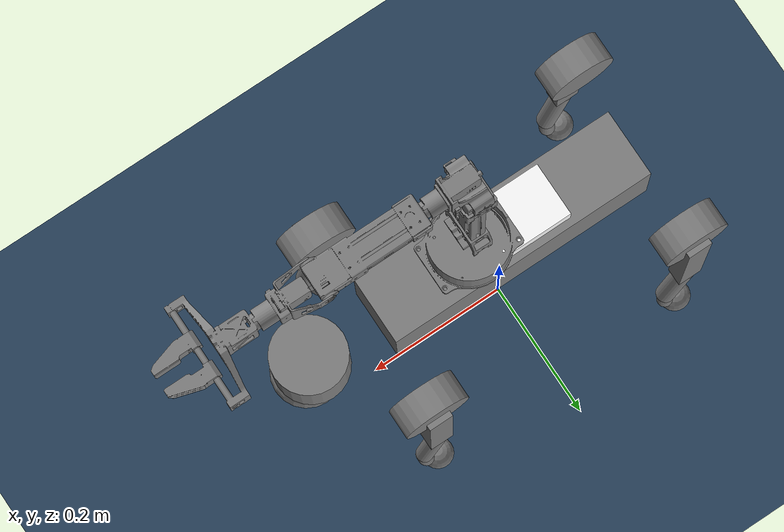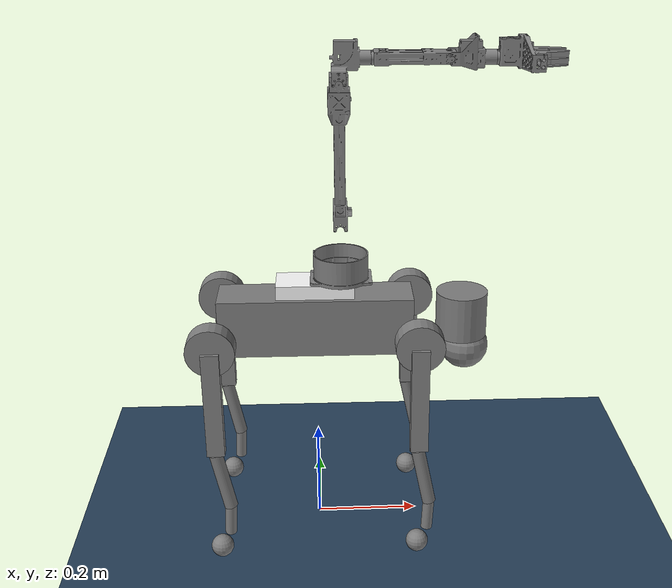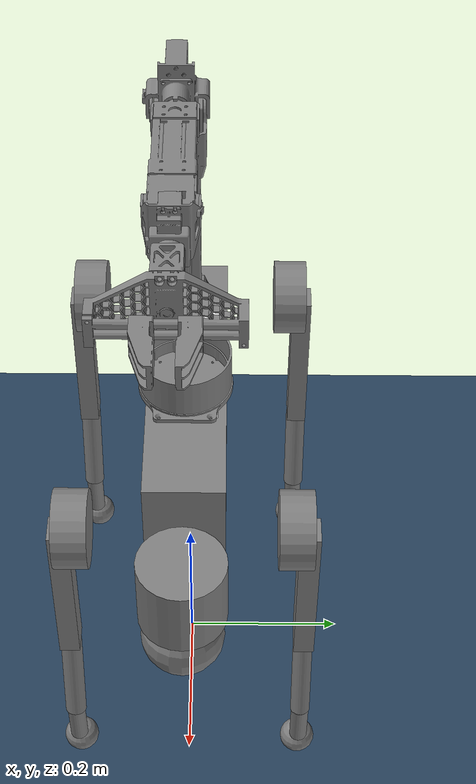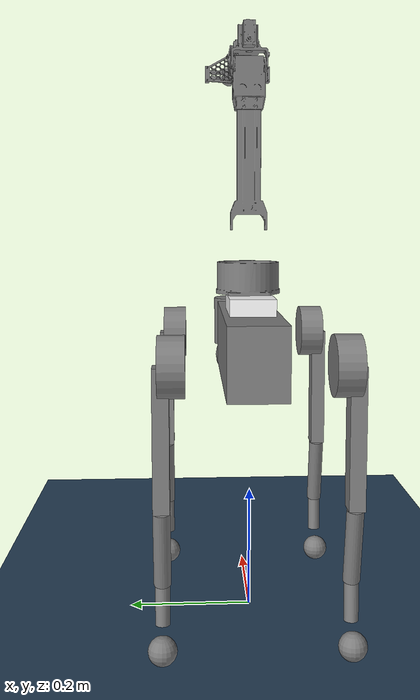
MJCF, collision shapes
<mujoco model="go2_arm scene">
  <include file="go2_arm.xml"/>

  <statistic center="0 0 0.1" extent="0.8"/>

  <visual>
    <headlight diffuse="0.6 0.6 0.6" ambient="0.3 0.3 0.3" specular="0 0 0"/>
    <rgba haze="0.15 0.25 0.35 1"/>
    <global azimuth="-130" elevation="-20"/>
  </visual>

  <asset>
    <texture type="skybox" builtin="gradient" rgb1="0.3 0.5 0.7" rgb2="0 0 0" width="512" height="3072"/>
    <texture type="2d" name="groundplane" builtin="checker" mark="edge" rgb1="0.2 0.3 0.4" rgb2="0.1 0.2 0.3"
      markrgb="0.8 0.8 0.8" width="300" height="300"/>
    <material name="groundplane" texture="groundplane" texuniform="true" texrepeat="5 5" reflectance="0.2"/>
  </asset>

  <worldbody>
    <light pos="0 0 1.5" dir="0 0 -1" directional="true"/>
    <geom name="floor" size="0 0 0.05" type="plane" material="groundplane"/>
  </worldbody>
</mujoco>

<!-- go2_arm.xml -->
<mujoco model="go2_arm">
  <compiler angle="radian" meshdir="assets" autolimits="true" />

  <default>
    <default class="go2">
      <default class="visual">
        <geom type="mesh" contype="0" conaffinity="0" density="0" group="2"/>
      </default>
      <default class="collision">
        <geom priority="1" condim="6" group="3"/>
      </default>
      <site rgba="1 0 0 1" group="5"/>
    </default>

    <default class="d1">
      <site group="5" size="0.005" rgba="0 1 0 1"/>
      <joint axis="0 0 1"/>
      <default class="d1_visual">
        <geom type="mesh" contype="0" conaffinity="0" density="0" group="2" material="black"/>
      </default>
      <default class="d1_collision">
        <geom group="3" type="mesh"/>
      </default>
      <default class="finger">
        <joint type="slide"/>
      </default>
    </default>
  </default>

  <asset>
    <material name="metal" rgba=".9 .95 .95 1" />
    <material name="black" rgba="0 0 0 1" />
    <material name="white" rgba="1 1 1 1" />
    <material name="gray" rgba="0.671705 0.692426 0.774270 1" />

    <mesh file="base_0.obj" />
    <mesh file="base_1.obj" />
    <mesh file="base_2.obj" />
    <mesh file="base_3.obj" />
    <mesh file="base_4.obj" />
    <mesh file="hip_0.obj" />
    <mesh file="hip_1.obj" />
    <mesh file="thigh_0.obj" />
    <mesh file="thigh_1.obj" />
    <mesh file="thigh_mirror_0.obj" />
    <mesh file="thigh_mirror_1.obj" />
    <mesh file="calf_0.obj" />
    <mesh file="calf_1.obj" />
    <mesh file="calf_mirror_0.obj" />
    <mesh file="calf_mirror_1.obj" />
    <mesh file="foot.obj" />

    <mesh file="base_link.obj"/>
    <mesh file="Link1.obj"/>
    <mesh file="Link2.obj"/>
    <mesh file="Link3.obj"/>
    <mesh file="Link4.obj"/>
    <mesh file="Link5.obj"/>
    <mesh file="Link6.obj"/>
    <mesh file="Link7_1.obj"/>
    <mesh file="Link7_2.obj"/>
  </asset>

  <worldbody>
    <body name="base_link" pos="0 0 0.445" childclass="go2">
      <inertial pos="0.021112 0 -0.005366" quat="-0.000543471 0.713435 -0.00173769 0.700719" mass="6.921" diaginertia="0.107027 0.0980771 0.0244531" />
      <freejoint name="floating_base_joint"/>
      <geom mesh="base_0" material="black" class="visual" />
      <geom mesh="base_1" material="black" class="visual" />
      <geom mesh="base_2" material="black" class="visual" />
      <geom mesh="base_3" material="white" class="visual" />
      <geom mesh="base_4" material="gray" class="visual" />
      <geom name="base1_collision" size="0.1881 0.04675 0.057" type="box" class="collision" />
      <geom name="base2_collision" size="0.05 0.045" pos="0.285 0 0.01" type="cylinder" class="collision" />
      <geom name="base3_collision" size="0.047" pos="0.293 0 -0.06" type="sphere" class="collision" />
      <site name="imu" pos="-0.02557 0 0.04232" group="5"/>

      <body name="arm_mount" pos="0 0 0.07075">
        <geom name="mount_visual" type="box" size="0.075 0.037 0.01375" material="white" class="visual"/>
        <geom name="mount_collision" type="box" size="0.075 0.037 0.01375" class="collision"/>

        <body name="arm" pos="0.05 0 0.01375" childclass="d1">
          <inertial pos="-0.00048697 -2.9605E-12 0.017142" mass="0.077233" fullinertia="0.00010316 0.00011888 0.00018362 -1.0285E-14 2.0449E-07 7.3026E-15"/>
          <geom class="d1_visual" mesh="base_link"/>
          <geom class="d1_collision" mesh="base_link"/>

          <body name="link_1" pos="0 0 0.0533" quat="-3.67321e-06 0 0 -1">
            <inertial pos="0.0024649 0.00010517 0.032696" quat="0.999717 -0.0236435 -0.00169588 -0.00221682" mass="0.13174" diaginertia="6.72365e-05 5.41766e-05 4.66199e-05"/>
            <joint name="joint1" type="hinge" axis="0 0 1" range="-2.35 2.35"/>
            <geom class="d1_visual" mesh="Link1"/>
            <geom class="d1_collision" mesh="Link1" contype="0" conaffinity="0"/>

            <body name="link_2" pos="0 0.028 0.0563" quat="-2.59734e-06 -2.59735e-06 -0.707108 -0.707105">
              <inertial pos="0.0002018 0.19201 -0.027007" quat="0.706347 0.707865 -0.00093681 0.00051949" mass="0.20213" diaginertia="0.00025682 0.000229681 6.33062e-05"/>
              <joint name="joint2" axis="0 0 -1" range="-1.57 1.57"/>
              <geom class="d1_visual" mesh="Link2"/>
              <geom class="d1_collision" mesh="Link2"/>

              <body name="link_3" pos="0 0.2693 0.0009">
                <inertial pos="0.015164 0.044482 -0.027461" quat="0.690744 0.690771 -0.151176 -0.151179" mass="0.0629" diaginertia="1.84718e-05 1.4964e-05 1.13662e-05"/>
                <joint name="joint3" axis="0 0 -1" range="-1.57 1.57"/>
                <geom class="d1_visual" mesh="Link3"/>
                <geom class="d1_collision" mesh="Link3"/>

                <body name="link_4" pos="0.0577 0.042 -0.0275" quat="0.499998 -0.5 0.500002 -0.5">
                  <inertial pos="-0.00029556 -0.00016104 0.091339" quat="0.999998 -3.46195e-05 0.00170171 0.00102754" mass="0.083332" diaginertia="3.93083e-05 3.4378e-05 1.15967e-05"/>
                  <joint name="joint4" axis="0 0 1" range="-2.35 2.35"/>
                  <geom class="d1_visual" mesh="Link4"/>
                  <geom class="d1_collision" mesh="Link4"/>

                  <body name="link_5" pos="-0.0001 -0.0237 0.14018" quat="0.499998 0.5 -0.5 0.500002">
                    <inertial pos="0.040573 0.0062891 -0.023838" quat="0.706153 0.706691 -0.0310982 -0.0311281" mass="0.053817" diaginertia="1.31069e-05 1.1049e-05 8.59523e-06"/>
                    <joint name="joint5" axis="0 0 -1" range="-1.57 1.57"/>
                    <geom class="d1_visual" mesh="Link5"/>
                    <geom class="d1_collision" mesh="Link5"/>

                    <body name="link_6" pos="0.0825 -0.0010782 -0.023822" quat="0.499998 -0.5 0.500002 -0.5">
                      <inertial pos="-0.0068528 -3.9973e-06 0.039705" quat="0.494949 0.495288 -0.504676 0.504992" mass="0.077892" diaginertia="4.8843e-05 3.8232e-05 1.7707e-05"/>
                      <joint name="joint6" axis="0 0 -1" range="-2.35 2.35"/>
                      <geom class="d1_visual" mesh="Link6"/>
                      <geom class="d1_collision" mesh="Link6"/>

                      <site name="tcp_site" pos="0 0 0.1247" quat="1 0 0 -1"/>
                      <site name="grasp_site" pos="0 0 0.1247" quat="1 0 0 -1"/>

                      <body name="link_left_finger" pos="-0.0056012 -0.029636 0.0706" quat="0.499848 -0.50015 -0.49985 -0.500152">
                        <inertial pos="0.018927 0.006 0.012082" quat="0 0.677073 0 0.735916" mass="0.015046" diaginertia="2.62715e-06 2.0229e-06 1.25975e-06"/>
                        <joint name="left_finger" axis="0 0 -1" range="0 0.03" class="finger"/>
                        <geom class="d1_visual" mesh="Link7_1"/>
                        <geom class="d1_collision" mesh="Link7_1"/>
                      </body>

                      <body name="link_right_finger" pos="-0.0056388 0.02964 0.0706" quat="0.500148 0.49985 -0.50015 0.499852">
                        <inertial pos="0.018927 -0.006 0.012082" quat="0 0.677073 0 0.735916" mass="0.015046" diaginertia="2.62715e-06 2.0229e-06 1.25975e-06"/>
                        <joint name="right_finger" axis="0 0 1" range="-0.03 0" class="finger"/>
                        <geom class="d1_visual" mesh="Link7_2"/>
                        <geom class="d1_collision" mesh="Link7_2"/>
                      </body>

                    </body>
                  </body>
                </body>
              </body>
            </body>
          </body>
        </body>
      </body>

      <body name="FL_hip" pos="0.1934 0.0465 0">
        <inertial pos="-0.0054 0.00194 -0.000105" quat="0.497014 0.499245 0.505462 0.498237" mass="0.678" diaginertia="0.00088403 0.000596003 0.000479967" />
        <joint name="FL_hip_joint" axis="1 0 0" range="-1.0472 1.0472"/>
        <geom mesh="hip_0" material="metal" class="visual" />
        <geom mesh="hip_1" material="gray" class="visual" />
        <geom name="FL_hip_collision" size="0.046 0.02" pos="0 0.08 0" quat="1 1 0 0" type="cylinder" class="collision" />
        <body name="FL_thigh" pos="0 0.0955 0">
          <inertial pos="-0.00374 -0.0223 -0.0327" quat="0.829533 0.0847635 -0.0200632 0.551623" mass="1.152" diaginertia="0.00594973 0.00584149 0.000878787" />
          <joint name="FL_thigh_joint" axis="0 1 0" range="-1.5708 3.4907"/>
          <geom mesh="thigh_0" material="metal" class="visual" />
          <geom mesh="thigh_1" material="gray" class="visual" />
          <geom name="FL_thigh_collision" size="0.1065 0.01225 0.017" pos="0 0 -0.1065" quat="0.707107 0 0.707107 0" type="box" class="collision" />
          <body name="FL_calf" pos="0 0 -0.213">
            <inertial pos="0.00629595 -0.000622121 -0.141417" quat="0.710672 0.00154099 -0.00450087 0.703508" mass="0.241352" diaginertia="0.0014901 0.00146356 5.31397e-05" />
            <joint name="FL_calf_joint" axis="0 1 0" range="-2.7227 -0.83776"/>
            <geom mesh="calf_0" material="gray" class="visual" />
            <geom mesh="calf_1" material="black" class="visual" />
            <geom name="FL_calf1_collision" size="0.012 0.06" pos="0.008 0 -0.06" quat="0.994493 0 -0.104807 0" type="cylinder" class="collision" />
            <geom name="FL_calf2_collision" size="0.011 0.0325" pos="0.02 0 -0.148" quat="0.999688 0 0.0249974 0" type="cylinder" class="collision" />
            <geom pos="0 0 -0.213" mesh="foot" class="visual" material="black" />
            <geom name="FL_foot_collision" pos="0 0 -0.213" type="sphere" size="0.022" class="collision"/>
            <site name="FL" pos="0 0 -0.213" type="sphere" size="0.022"/>
          </body>
        </body>
      </body>
      <body name="FR_hip" pos="0.1934 -0.0465 0">
        <inertial pos="-0.0054 -0.00194 -0.000105" quat="0.498237 0.505462 0.499245 0.497014" mass="0.678" diaginertia="0.00088403 0.000596003 0.000479967" />
        <joint name="FR_hip_joint" axis="1 0 0" range="-1.0472 1.0472"/>
        <geom mesh="hip_0" material="metal" class="visual" quat="4.63268e-05 1 0 0" />
        <geom mesh="hip_1" material="gray" class="visual" quat="4.63268e-05 1 0 0" />
        <geom name="FR_hip_collision" size="0.046 0.02" pos="0 -0.08 0" quat="0.707107 0.707107 0 0" type="cylinder" class="collision" />
        <body name="FR_thigh" pos="0 -0.0955 0">
          <inertial pos="-0.00374 0.0223 -0.0327" quat="0.551623 -0.0200632 0.0847635 0.829533" mass="1.152" diaginertia="0.00594973 0.00584149 0.000878787" />
          <joint name="FR_thigh_joint" axis="0 1 0" range="-1.5708 3.4907"/>
          <geom mesh="thigh_mirror_0" material="metal" class="visual" />
          <geom mesh="thigh_mirror_1" material="gray" class="visual" />
          <geom name="FR_thigh_collision" size="0.1065 0.01225 0.017" pos="0 0 -0.1065" quat="0.707107 0 0.707107 0" type="box" class="collision" />
          <body name="FR_calf" pos="0 0 -0.213">
            <inertial pos="0.00629595 0.000622121 -0.141417" quat="0.703508 -0.00450087 0.00154099 0.710672" mass="0.241352" diaginertia="0.0014901 0.00146356 5.31397e-05" />
            <joint name="FR_calf_joint" axis="0 1 0" range="-2.7227 -0.83776"/>
            <geom mesh="calf_mirror_0" material="gray" class="visual" />
            <geom mesh="calf_mirror_1" material="black" class="visual" />
            <geom name="FR_calf1_collision" size="0.013 0.06" pos="0.01 0 -0.06" quat="0.995004 0 -0.0998334 0" type="cylinder" class="collision" />
            <geom name="FR_calf2_collision" size="0.011 0.0325" pos="0.02 0 -0.148" quat="0.999688 0 0.0249974 0" type="cylinder" class="collision" />
            <geom pos="0 0 -0.213" mesh="foot" class="visual" material="black" />
            <geom name="FR_foot_collision" pos="0 0 -0.213" type="sphere" size="0.022" class="collision"/>
            <site name="FR" pos="0 0 -0.213" type="sphere" size="0.022"/>
          </body>
        </body>
      </body>
      <body name="RL_hip" pos="-0.1934 0.0465 0">
        <inertial pos="0.0054 0.00194 -0.000105" quat="0.505462 0.498237 0.497014 0.499245" mass="0.678" diaginertia="0.00088403 0.000596003 0.000479967" />
        <joint name="RL_hip_joint" axis="1 0 0" range="-1.0472 1.0472"/>
        <geom mesh="hip_0" material="metal" class="visual" quat="4.63268e-05 0 1 0" />
        <geom mesh="hip_1" material="gray" class="visual" quat="4.63268e-05 0 1 0" />
        <geom name="RL_hip_collision" size="0.046 0.02" pos="0 0.08 0" quat="0.707107 0.707107 0 0" type="cylinder" class="collision" />
        <body name="RL_thigh" pos="0 0.0955 0">
          <inertial pos="-0.00374 -0.0223 -0.0327" quat="0.829533 0.0847635 -0.0200632 0.551623" mass="1.152" diaginertia="0.00594973 0.00584149 0.000878787" />
          <joint name="RL_thigh_joint" axis="0 1 0" range="-0.5236 4.5379"/>
          <geom mesh="thigh_0" material="metal" class="visual" />
          <geom mesh="thigh_1" material="gray" class="visual" />
          <geom name="RL_thigh_collision" size="0.1065 0.01225 0.017" pos="0 0 -0.1065" quat="0.707107 0 0.707107 0" type="box" class="collision" />
          <body name="RL_calf" pos="0 0 -0.213">
            <inertial pos="0.00629595 -0.000622121 -0.141417" quat="0.710672 0.00154099 -0.00450087 0.703508" mass="0.241352" diaginertia="0.0014901 0.00146356 5.31397e-05" />
            <joint name="RL_calf_joint" axis="0 1 0" range="-2.7227 -0.83776"/>
            <geom mesh="calf_0" material="gray" class="visual" />
            <geom mesh="calf_1" material="black" class="visual" />
            <geom name="RL_calf1_collision" size="0.013 0.06" pos="0.01 0 -0.06" quat="0.995004 0 -0.0998334 0" type="cylinder" class="collision" />
            <geom name="RL_calf2_collision" size="0.011 0.0325" pos="0.02 0 -0.148" quat="0.999688 0 0.0249974 0" type="cylinder" class="collision" />
            <geom pos="0 0 -0.213" mesh="foot" class="visual" material="black" />
            <geom name="RL_foot_collision" pos="0 0 -0.213" type="sphere" size="0.022" class="collision"/>
            <site name="RL" pos="0 0 -0.213" type="sphere" size="0.022"/>
          </body>
        </body>
      </body>
      <body name="RR_hip" pos="-0.1934 -0.0465 0">
        <inertial pos="0.0054 -0.00194 -0.000105" quat="0.499245 0.497014 0.498237 0.505462" mass="0.678" diaginertia="0.00088403 0.000596003 0.000479967" />
        <joint name="RR_hip_joint" axis="1 0 0" range="-1.0472 1.0472"/>
        <geom mesh="hip_0" material="metal" class="visual" quat="2.14617e-09 4.63268e-05 4.63268e-05 -1" />
        <geom mesh="hip_1" material="gray" class="visual" quat="2.14617e-09 4.63268e-05 4.63268e-05 -1" />
        <geom name="RR_hip_collision" size="0.046 0.02" pos="0 -0.08 0" quat="0.707107 0.707107 0 0" type="cylinder" class="collision" />
        <body name="RR_thigh" pos="0 -0.0955 0">
          <inertial pos="-0.00374 0.0223 -0.0327" quat="0.551623 -0.0200632 0.0847635 0.829533" mass="1.152" diaginertia="0.00594973 0.00584149 0.000878787" />
          <joint name="RR_thigh_joint" axis="0 1 0" range="-0.5236 4.5379"/>
          <geom mesh="thigh_mirror_0" material="metal" class="visual" />
          <geom mesh="thigh_mirror_1" material="gray" class="visual" />
          <geom name="RR_thigh_collision" size="0.1065 0.01225 0.017" pos="0 0 -0.1065" quat="0.707107 0 0.707107 0" type="box" class="collision" />
          <body name="RR_calf" pos="0 0 -0.213">
            <inertial pos="0.00629595 0.000622121 -0.141417" quat="0.703508 -0.00450087 0.00154099 0.710672" mass="0.241352" diaginertia="0.0014901 0.00146356 5.31397e-05" />
            <joint name="RR_calf_joint" axis="0 1 0" range="-2.7227 -0.83776"/>
            <geom mesh="calf_mirror_0" material="gray" class="visual" />
            <geom mesh="calf_mirror_1" material="black" class="visual" />
            <geom name="RR_calf1_collision" size="0.013 0.06" pos="0.01 0 -0.06" quat="0.995004 0 -0.0998334 0" type="cylinder" class="collision" />
            <geom name="RR_calf2_collision" size="0.011 0.0325" pos="0.02 0 -0.148" quat="0.999688 0 0.0249974 0" type="cylinder" class="collision" />
            <geom pos="0 0 -0.213" mesh="foot" class="visual" material="black" />
            <geom name="RR_foot_collision" pos="0 0 -0.213" type="sphere" size="0.022" class="collision"/>
            <site name="RR" pos="0 0 -0.213" type="sphere" size="0.022"/>
          </body>
        </body>
      </body>
    </body>
  </worldbody>

  <sensor>
    <gyro name="imu_ang_vel" site="imu"/>
    <velocimeter name="imu_lin_vel" site="imu"/>
    <accelerometer name="imu_lin_acc" site="imu"/>
    <subtreeangmom name="root_angmom" body="base_link"/>
  </sensor>

  <equality>
    <joint joint1="left_finger" joint2="right_finger" polycoef="0 -1 0 0 0"/>
  </equality>
</mujoco>
